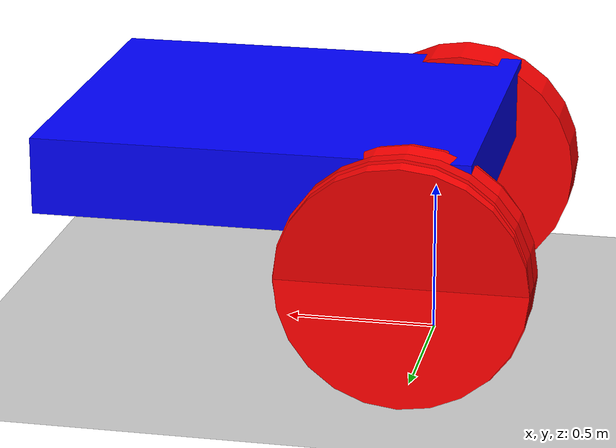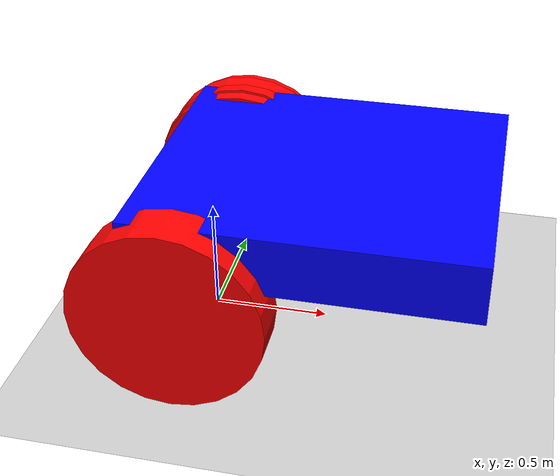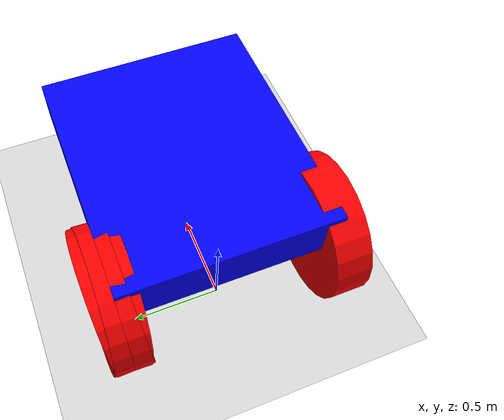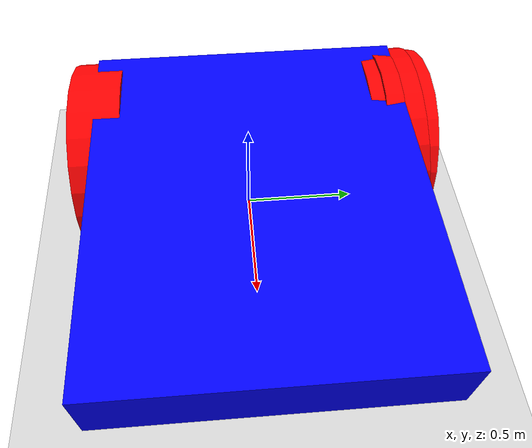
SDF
<sdf version='1.9'>
  <world name='car_world'>
    <physics name='1ms' type='ignored'>
      <max_step_size>0.001</max_step_size>
      <real_time_factor>1</real_time_factor>
      <real_time_update_rate>1000</real_time_update_rate>
    </physics>
    <plugin name='ignition::gazebo::systems::Physics' filename='libignition-gazebo-physics-system.so'/>
    <plugin name='ignition::gazebo::systems::UserCommands' filename='libignition-gazebo-user-commands-system.so'/>
    <plugin name='ignition::gazebo::systems::SceneBroadcaster' filename='libignition-gazebo-scene-broadcaster-system.so'/>
    <gravity>0 0 -9.8</gravity>
    <magnetic_field>6e-06 2.3e-05 -4.2e-05</magnetic_field>
    <atmosphere type='adiabatic'/>
    <scene>
      <ambient>0.4 0.4 0.4 1</ambient>
      <background>0.7 0.7 0.7 1</background>
      <shadows>true</shadows>
    </scene>
    <model name='ground_plane'>
      <static>true</static>
      <link name='link'>
        <collision name='collision'>
          <geometry>
            <plane>
              <normal>0 0 1</normal>
              <size>1 1</size>
            </plane>
          </geometry>
          <surface>
            <friction>
              <ode/>
            </friction>
            <bounce/>
            <contact/>
          </surface>
        </collision>
        <visual name='visual'>
          <geometry>
            <plane>
              <normal>0 0 1</normal>
              <size>100 100</size>
            </plane>
          </geometry>
          <material>
            <ambient>0.8 0.8 0.8 1</ambient>
            <diffuse>0.8 0.8 0.8 1</diffuse>
            <specular>0.8 0.8 0.8 1</specular>
          </material>
        </visual>
        <pose>0 0 0 0 -0 0</pose>
        <inertial>
          <pose>0 0 0 0 -0 0</pose>
          <mass>1</mass>
          <inertia>
            <ixx>1</ixx>
            <ixy>0</ixy>
            <ixz>0</ixz>
            <iyy>1</iyy>
            <iyz>0</iyz>
            <izz>1</izz>
          </inertia>
        </inertial>
        <enable_wind>false</enable_wind>
      </link>
      <pose>0 0 0 0 -0 0</pose>
      <self_collide>false</self_collide>
    </model>
    <model name='vehicle_blue' canonical_link='chassis'>
      <pose>0 0 -0.15 0 0 0</pose>
      <link name='chassis'>
        <pose>0.5 0 0.8 0 -0 0</pose>
        <inertial>
          <mass>1.14395</mass>
          <inertia>
            <ixx>0.095328999999999997</ixx>
            <ixy>0</ixy>
            <ixz>0</ixz>
            <iyy>0.38131700000000002</iyy>
            <iyz>0</iyz>
            <izz>0.47664600000000001</izz>
          </inertia>
          <pose>0 0 0 0 -0 0</pose>
        </inertial>
        <visual name='visual'>
          <geometry>
            <box>
              <size>1.4 1.2 0.25</size>
            </box>
          </geometry>
          <material>
            <ambient>0 0 1 1</ambient>
            <diffuse>0 0 1 1</diffuse>
            <specular>0 0 1 1</specular>
          </material>
        </visual>
        <collision name='collision'>
          <geometry>
            <box>
              <size>2 1 0.5</size>
            </box>
          </geometry>
          <surface>
            <friction>
              <ode/>
            </friction>
            <bounce/>
            <contact/>
          </surface>
        </collision>
        <enable_wind>false</enable_wind>
      </link>
      <link name='rear_left_wheel'>
        <pose>-0 0.600039 0.55 -1.5 -0 -0</pose>
        <inertial>
          <mass>1</mass>
          <inertia>
            <ixx>0.043333000000000003</ixx>
            <ixy>0</ixy>
            <ixz>0</ixz>
            <iyy>0.043333000000000003</iyy>
            <iyz>0</iyz>
            <izz>0.080000000000000002</izz>
          </inertia>
          <pose>0 0 0 0 -0 0</pose>
        </inertial>
        <visual name='visual'>
          <geometry>
            <cylinder>
              <radius>0.40000000000000002</radius>
              <length>0.20000000000000001</length>
            </cylinder>
          </geometry>
          <material>
            <ambient>1 0 0 1</ambient>
            <diffuse>1 0 0 1</diffuse>
            <specular>1 0 0 1</specular>
          </material>
        </visual>
        <collision name='collision'>
          <geometry>
            <cylinder>
              <radius>0.40000000000000002</radius>
              <length>0.20000000000000001</length>
            </cylinder>
          </geometry>
          <surface>
            <friction>
              <ode/>
            </friction>
            <bounce/>
            <contact/>
          </surface>
        </collision>
        <enable_wind>false</enable_wind>
      </link>
      <link name='front_left_wheel'>
        <pose>-0 0.600039 0.55 1.5 -0 -0</pose>
        <inertial>
          <mass>1</mass>
          <inertia>
            <ixx>0.043333000000000003</ixx>
            <ixy>0</ixy>
            <ixz>0</ixz>
            <iyy>0.043333000000000003</iyy>
            <iyz>0</iyz>
            <izz>0.080000000000000002</izz>
          </inertia>
          <pose>0 0 0 0 -0 0</pose>
        </inertial>
        <visual name='visual'>
          <geometry>
            <cylinder>
              <radius>0.40000000000000002</radius>
              <length>0.20000000000000001</length>
            </cylinder>
          </geometry>
          <material>
            <ambient>1 0 0 1</ambient>
            <diffuse>1 0 0 1</diffuse>
            <specular>1 0 0 1</specular>
          </material>
        </visual>
        <collision name='collision'>
          <geometry>
            <cylinder>
              <radius>0.40000000000000002</radius>
              <length>0.20000000000000001</length>
            </cylinder>
          </geometry>
          <surface>
            <friction>
              <ode/>
            </friction>
            <bounce/>
            <contact/>
          </surface>
        </collision>
        <enable_wind>false</enable_wind>
      </link>
      <link name='right_wheel'>
        <pose>-0 -0.599961 0.55 -1.5708 -0 -0</pose>
        <inertial>
          <mass>1</mass>
          <inertia>
            <ixx>0.043333000000000003</ixx>
            <ixy>0</ixy>
            <ixz>0</ixz>
            <iyy>0.043333000000000003</iyy>
            <iyz>0</iyz>
            <izz>0.080000000000000002</izz>
          </inertia>
          <pose>0 0 0 0 -0 0</pose>
        </inertial>
        <visual name='visual'>
          <geometry>
            <cylinder>
              <radius>0.40000000000000002</radius>
              <length>0.20000000000000001</length>
            </cylinder>
          </geometry>
          <material>
            <ambient>1 0 0 1</ambient>
            <diffuse>1 0 0 1</diffuse>
            <specular>1 0 0 1</specular>
          </material>
        </visual>
        <collision name='collision'>
          <geometry>
            <cylinder>
              <radius>0.40000000000000002</radius>
              <length>0.20000000000000001</length>
            </cylinder>
          </geometry>
          <surface>
            <friction>
              <ode/>
            </friction>
            <bounce/>
            <contact/>
          </surface>
        </collision>
        <enable_wind>false</enable_wind>
      </link>
      <static>false</static>
      <self_collide>false</self_collide>
    </model>
    <light name='sun' type='directional'>
      <pose>0 0 10 0 -0 0</pose>
      <cast_shadows>true</cast_shadows>
      <intensity>1</intensity>
      <direction>-0.5 0.1 -0.9</direction>
      <diffuse>0.8 0.8 0.8 1</diffuse>
      <specular>0.2 0.2 0.2 1</specular>
      <attenuation>
        <range>1000</range>
        <linear>0.01</linear>
        <constant>0.90000000000000002</constant>
        <quadratic>0.001</quadratic>
      </attenuation>
      <spot>
        <inner_angle>0</inner_angle>
        <outer_angle>0</outer_angle>
        <falloff>0</falloff>
      </spot>
    </light>
    <joint name='left_wheel_joint' type='revolute'>
      <pose relative_to='left_wheel'/>
      <parent>chassis</parent>
      <child>left_wheel</child>
      <axis>
        <xyz expressed_in='__model__'>0 1 0</xyz> <!--can be defined as any frame or even arbitrary frames-->
        <limit>
            <lower>-1.79769e+308</lower>    <!--negative infinity-->
            <upper>1.79769e+308</upper>     <!--positive infinity-->
        </limit>
      </axis>
    </joint>

    <joint name='right_wheel_joint' type='revolute'>
      <pose relative_to='right_wheel'/>
      <parent>chassis</parent>
      <child>right_wheel</child>
      <axis>
        <xyz expressed_in='__model__'>0 1 0</xyz>
        <limit>
          <lower>-1.79769e+308</lower>    <!--negative infinity-->
          <upper>1.79769e+308</upper>     <!--positive infinity-->
        </limit>
      </axis>
    </joint>
  </world>
</sdf>
